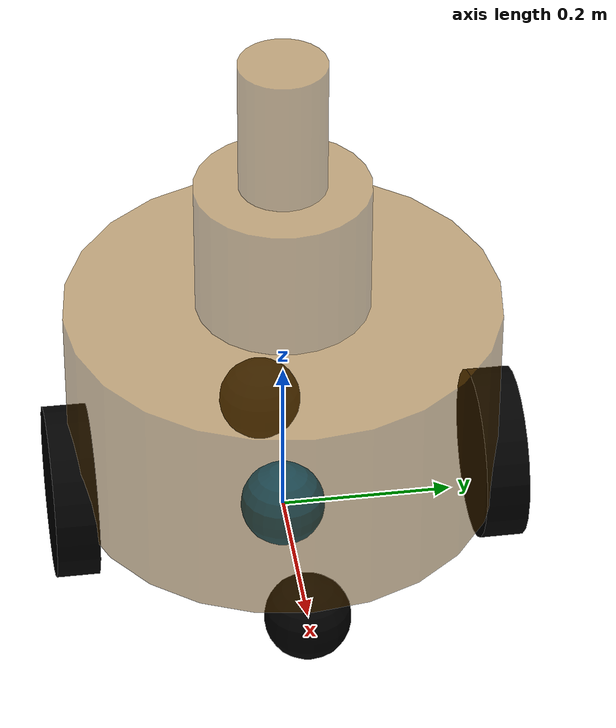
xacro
<robot name="my_base" xmlns:xacro="http://www.ros.org/wiki/xacro">
    <xacro:property name="PI" value="3.141"/>
    <material name="black">
        <color rgba="0.0 0.0 0.0 1.0" />
    </material>

    <!-- base property -->
    <xacro:property name="base_footprint_radius" value="0.05" />
    <xacro:property name="base_link_radius" value="0.25" />
    <xacro:property name="base_link_length" value="0.25" />
    <xacro:property name="earth_space" value="0.1" />
    <xacro:property name="base_link_m" value="5.0" />

    <!-- shelf property -->
    <xacro:property name="shelf_link_radius" value="0.1" />
    <xacro:property name="shelf_link_length" value="0.16" />
    <xacro:property name="shelf_link_m" value="2.0" />

    <xacro:property name="shelf_linkx_radius" value="0.05" />
    <xacro:property name="shelf_linkx_length" value="0.16" />
    <xacro:property name="shelf_linkx_m" value="0.5" />

    <!-- drving wheel -->
    <xacro:property name="wheel_radius" value="0.1" />
    <xacro:property name="wheel_length" value="0.05" />
    <xacro:property name="wheel_m" value="0.05" />
    <xacro:macro name="add_wheels" params="name flag">
      <link name="${name}_wheel">
        <visual>
          <geometry>
            <cylinder radius="${wheel_radius}" length="${wheel_length}" />
          </geometry>
          <origin xyz="0.0 0.0 0.0" rpy="${PI / 2} 0.0 0.0" />
          <material name="black" />
        </visual>
        <collision>
          <geometry>
            <cylinder radius="${wheel_radius}" length="${wheel_length}" />
          </geometry>
          <origin xyz="0.0 0.0 0.0" rpy="${PI / 2} 0.0 0.0" />
        </collision>
        <xacro:cylinder_inertial_matrix m="${wheel_m}" r="${wheel_radius}" h="${wheel_length}" />
      </link>

      <joint name="${name}" type="continuous">
        <parent link="base_link" />
        <child link="${name}_wheel" />
        <origin xyz="0 ${flag * base_link_radius} ${-(earth_space + base_link_length / 2 - wheel_radius) }" />
        <axis xyz="0 1 0" />
      </joint>
      <gazebo reference="${name}_wheel">
        <material>Gazebo/White</material>
      </gazebo>

              <!-- Transmission is important to link the joints and the controller -->
        <transmission name="${name}_trans">
            <type>transmission_interface/SimpleTransmission</type>
            <joint name="${name}_wheel" >
                <hardwareInterface>hardware_interface/VelocityJointInterface</hardwareInterface>
            </joint>
            <actuator name="${name}_motor">
                <hardwareInterface>hardware_interface/VelocityJointInterface</hardwareInterface>
                <mechanicalReduction>1</mechanicalReduction>
            </actuator>
        </transmission>
    </xacro:macro>

    <xacro:add_wheels name="base_l_wheel_joint" flag="1" />
    <xacro:add_wheels name="base_r_wheel_joint" flag="-1" />
    <!-- carrying wheel -->
    <xacro:property name="support_wheel_radius" value="0.05" />
    <xacro:property name="support_wheel_m" value="0.025" />
    <xacro:macro name="add_support_wheel" params="name flag" >
      <link name="${name}_wheel">
        <visual>
            <geometry>
                <sphere radius="${support_wheel_radius}" />
            </geometry>
            <origin xyz="0 0 0" rpy="0 0 0" />
            <material name="black" />
        </visual>
        <collision>
            <geometry>
                <sphere radius="${support_wheel_radius}" />
            </geometry>
            <origin xyz="0 0 0" rpy="0 0 0" />
        </collision>
        <xacro:sphere_inertial_matrix m="${support_wheel_m}" r="${support_wheel_radius}" />
      </link>

      <joint name="${name}_wheel2base_link" type="continuous">
          <parent link="base_link" />
          <child link="${name}_wheel" />
          <origin xyz="${flag * (base_link_radius - support_wheel_radius)} 0 ${-(base_link_length / 2 + earth_space / 2)}" />
          <axis xyz="1 1 1" />
      </joint>
      <gazebo reference="${name}_wheel">
       <material>Gazebo/Black</material>
      </gazebo>
    </xacro:macro>

    <xacro:add_support_wheel name="front" flag="1" />
    <xacro:add_support_wheel name="back" flag="-1" />

     <!--mbot_base -->
    <xacro:macro name="mbot_base_gazebo">
      <link name="base_footprint">
         <visual>
           <geometry>
             <sphere radius="${base_footprint_radius}" />
          </geometry>
         </visual>
       </link>

      <link name="base_link">
         <visual>
           <geometry>
              <cylinder radius="${base_link_radius}" length="${base_link_length}" />
           </geometry>
           <origin xyz="0 0 0" rpy="0 0 0" />
           <material name="yellow">
               <color rgba="0.5 0.3 0.0 0.5" />
             </material>
         </visual>
         <collision>
           <geometry>
              <cylinder radius="${base_link_radius}" length="${base_link_length}" />
           </geometry>
           <origin xyz="0 0 0" rpy="0 0 0" />
           </collision>
               <xacro:cylinder_inertial_matrix m="${base_link_m}" r="${base_link_radius}" h="${base_link_length}" />
       </link>

      <joint name="base_link2base_footprint" type="fixed">
        <parent link="base_footprint" />
        <child link="base_link" />
        <origin xyz="0 0 ${earth_space/2 + base_link_length / 2 }" />
      </joint>

      <gazebo reference="base_link">
          <material>Gazebo/Yellow</material>
      </gazebo>

      <!-- control  -->
      <gazebo>
            <plugin name="differential_drive_controller"
                    filename="libgazebo_ros_diff_drive.so">
                <rosDebugLevel>Debug</rosDebugLevel>
                <publishWheelTF>true</publishWheelTF>
                <robotNamespace>/</robotNamespace>
                <publishTf>1</publishTf>
                <publishWheelJointState>true</publishWheelJointState>
                <alwaysOn>true</alwaysOn>
                <updateRate>100.0</updateRate>
                <legacyMode>true</legacyMode>
                <leftJoint>base_l_wheel_joint</leftJoint>
                <rightJoint>base_r_wheel_joint</rightJoint>
                <wheelSeparation>${base_link_radius*2}</wheelSeparation>
                <wheelDiameter>${2*wheel_radius}</wheelDiameter>
                <broadcastTF>1</broadcastTF>
                <wheelTorque>30</wheelTorque>
                <wheelAcceleration>1.8</wheelAcceleration>
                <commandTopic>cmd_vel</commandTopic>
                <odometryFrame>odom</odometryFrame>
                <odometryTopic>odom</odometryTopic>
                <robotBaseFrame>base_footprint</robotBaseFrame>
            </plugin>
       </gazebo>

     </xacro:macro>

     <mbot_base_gazebo/>

     <!--shelf -->
     <xacro:macro name="mbot_shelf_gazebo">

      <link name="shelf_link">
         <visual>
           <geometry>
              <cylinder radius="${shelf_link_radius}" length="${shelf_link_length}" />
           </geometry>
           <origin xyz="0 0 0" rpy="0 0 0" />
           <material name="yellow">
               <color rgba="0.5 0.3 0.0 0.5" />
             </material>
         </visual>
         <collision>
           <geometry>
              <cylinder radius="${shelf_link_radius}" length="${shelf_link_length}" />
           </geometry>
           <origin xyz="0 0 0" rpy="0 0 0" />
           </collision>
               <xacro:cylinder_inertial_matrix m="${shelf_link_m}" r="${shelf_link_radius}" h="${shelf_link_length}" />
       </link>

        <joint name="shelf_link2base_link" type="fixed">
        <parent link="base_link" />
        <child link="shelf_link" />
        <origin xyz="0 0 ${(shelf_link_length + base_link_length) / 2 }" />
      </joint>

      </xacro:macro>

       <mbot_shelf_gazebo/>

       <xacro:macro name="mbot_shelf_gazebox">

      <link name="shelf_linkx">
         <visual>
           <geometry>
              <cylinder radius="${shelf_linkx_radius}" length="${shelf_linkx_length}" />
           </geometry>
           <origin xyz="0 0 0" rpy="0 0 0" />
           <material name="yellow">
               <color rgba="0.5 0.3 0.0 0.5" />
             </material>
         </visual>
         <collision>
           <geometry>
              <cylinder radius="${shelf_linkx_radius}" length="${shelf_linkx_length}" />
           </geometry>
           <origin xyz="0 0 0" rpy="0 0 0" />
           </collision>
               <xacro:cylinder_inertial_matrix m="${shelf_linkx_m}" r="${shelf_linkx_radius}" h="${shelf_linkx_length}" />
       </link>

        <joint name="shelf_linkx2shelf_link" type="fixed">
        <parent link="shelf_link" />
        <child link="shelf_linkx" />
        <origin xyz="0 0 ${(shelf_link_length+shelf_linkx_length ) / 2 }" />
      </joint>

      </xacro:macro>

       <mbot_shelf_gazebox/>

</robot>
